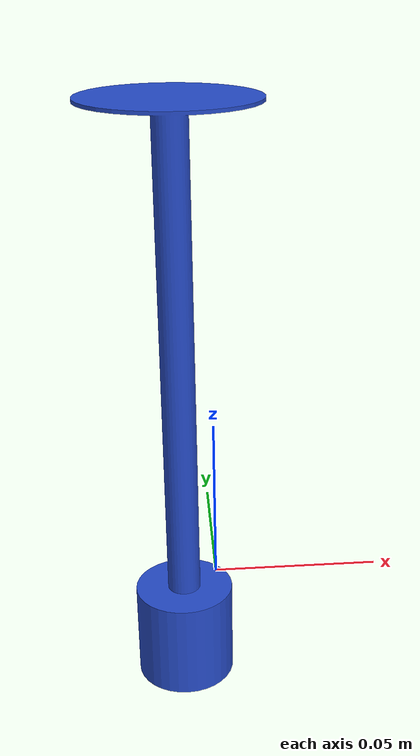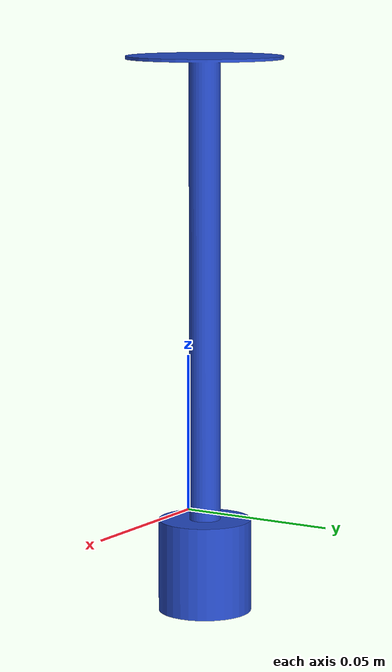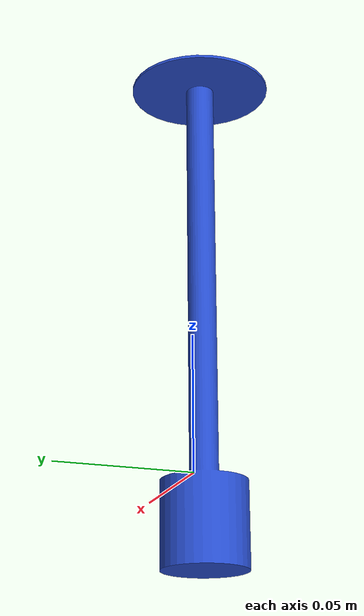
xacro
<?xml version="1.0"?>
<robot xmlns:xacro="http://ros.org/wiki/xacro" name="simple_tool">
  <link name="my_tool">
    <inertial>
      <origin xyz="0 0 0" />
      <mass value="1.0" />
      <inertia  ixx="0.0" ixy="0.0"  ixz="0.0"  iyy="0.0"  iyz="0.0"  izz="0.0" />
    </inertial>
    <visual>
      <origin xyz="-0.010 0 -0.02" rpy="0 0 0"/>
      <geometry>
        <mesh filename="package://affordance_experiment/models/umbrella.dae" />
      </geometry>
    </visual>
    <collision>
      <origin xyz="-0.01 0 -0.02" rpy="0 0 0"/>
      <geometry>
        <mesh filename="package://affordance_experiment/models/umbrella.dae" />
      </geometry>
    </collision>
  </link>
  <gazebo reference="my_tool">
    <material>Gazebo/Blue</material>
  </gazebo>
</robot>
